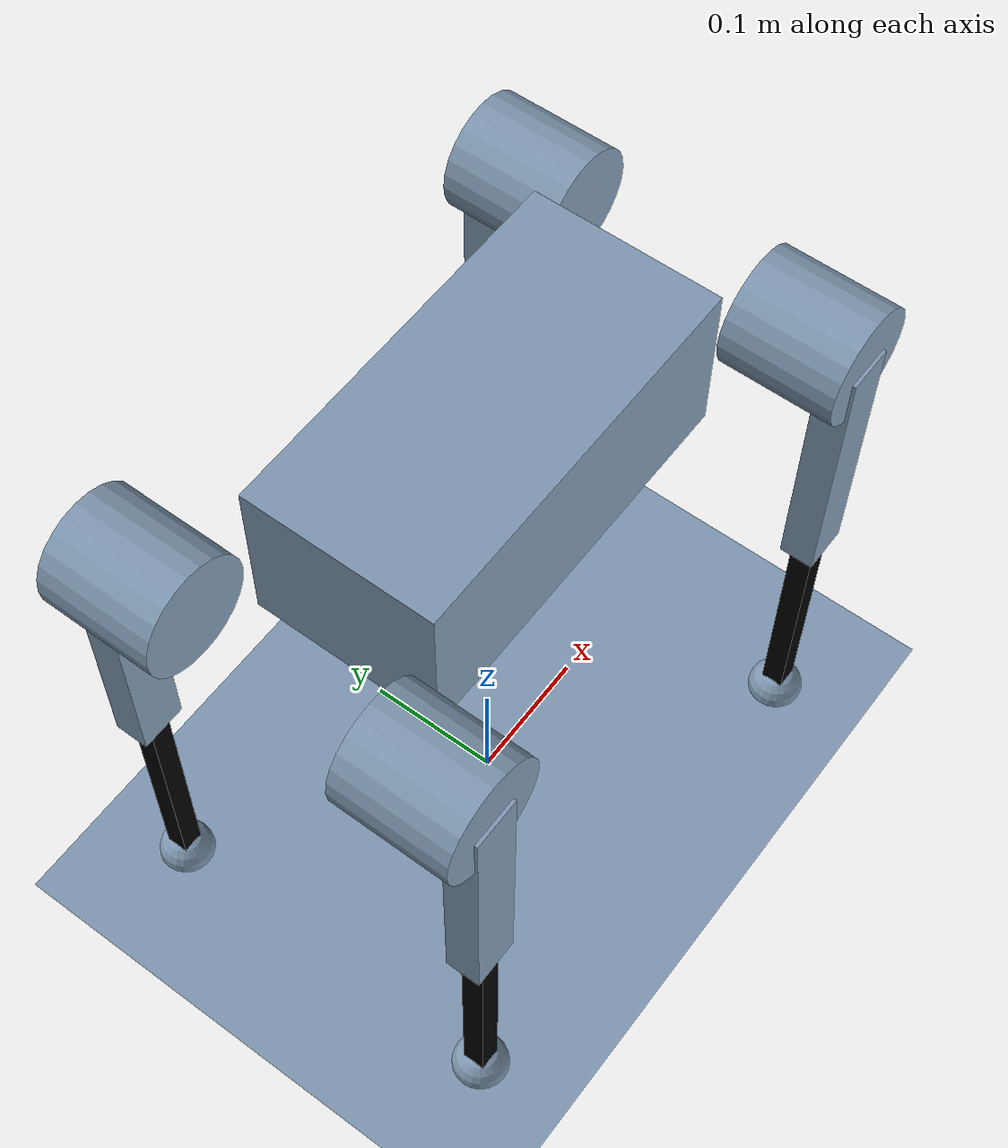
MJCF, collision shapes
<mujoco model="a1_description">
    <compiler angle="radian" meshdir="meshes/" />
    <size njmax="500" nconmax="100" />
    <!-- -9.806 gravity term -->
    <option gravity='0 0 -9.81' iterations='50' solver='Newton' timestep='0.0005'/>
    <option cone="elliptic" impratio="100" integrator="RK4"/> <!-- integrator="RK4" -->
    <option>
        <flag sensornoise="enable" />
    </option>

    <default>
        <!-- solimp="0.05 1 0.01 .9 1" solref="-50 -2000" -->
        <geom contype="1" conaffinity="1" solimp="0.05 1 0.01 .9 1" solref="-50 -2000" condim="6"
              friction="0.5 0.02 0.01" rgba="0.5 0.6 0.7 1" margin="0.001" group="0"/> <!-- 0.8 friction -->

        <light castshadow="false" diffuse="1 1 1"/>
        <motor ctrlrange="-33.5 33.5" ctrllimited="true"/>
        <camera fovy="35"/>
        <joint damping="1.0" armature="0.01" frictionloss="0.2" /> <!-- damping = 0.2? -->
    </default>

    <asset>
        <mesh name="trunk" file="trunk.stl" />
        <mesh name="hip" file="hip.stl" />
        <mesh name="thigh_mirror" file="thigh_mirror.stl" />
        <mesh name="calf" file="calf.stl" />
        <mesh name="thigh" file="thigh.stl" />
    </asset>

    <asset>
        <texture type="skybox" builtin="gradient" rgb1=".3 .5 .7" rgb2="0 0 0" width="32" height="512"/>
        <texture name="body" type="cube" builtin="flat" width="128" height="128" rgb1="1 0.5 .2" rgb2="1 0.5 .2" markrgb="1 1 1" random="0.01"/>
        <material name="body" texture="body" texuniform="true" rgba="1 0.5 .2 1"/>
        <texture name="trunk" type="cube" builtin="flat" width="128" height="128" rgb1=".3 .3 .3" rgb2=".3 .3 .3" markrgb="1 1 1" random="0.01"/>
        <material name="trunk" texture="trunk" rgba=".2 .2 .2 1"/>
        <texture name="plane" type="2d" builtin="checker" width="512" height="512" rgb1=".5 .5 .5" rgb2=".6 .6 .6"/> <!-- rgb1=".1 .2 .3" rgb2=".2 .3 .4" -->
        <material name="plane" texture="plane" texrepeat="1 1" texuniform="true" reflectance="0.01"/>
    </asset>

    <visual>
        <rgba com="0.502 1.0 0 0.5" contactforce="0.98 0.4 0.4 0.7" contactpoint="1.0 1.0 0.6 0.4" haze="0.15 0.25 0.35 1"/>
        <scale com="0.2" forcewidth="0.035" contactwidth="0.10" contactheight="0.04"/>
        <global azimuth="-220" elevation="-20" />
    </visual>

    <statistic extent="1.5" />

    <worldbody>
        <light name="spotlight" mode="targetbodycom" target="trunk" diffuse="1 1 1" specular="0.3 0.3 0.3" pos="0 -2 3" cutoff="100"/>
        <camera name="track" mode="trackcom" pos="0 0 1.5" xyaxes="1 0 0 0 0.707 0.707"/>
        <geom name="floor" size="0 0 .05" type="plane" material="plane" condim="6"/> <!-- condim = "3" -->

        <body name="trunk" pos="0 0 .4" gravcomp="0">
            <inertial pos="0.0127283 0.00218554 0.000514891" quat="0.00186575 0.711506 0.000389649 0.702677" mass="6.001" diaginertia="0.0648213 0.0565803 0.0169323" />
            <joint name="body" type="free" />
            <geom type="mesh" contype="0" conaffinity="0" group="1" material="trunk" mesh="trunk" />
            <geom size="0.1335 0.066 0.057" type="box" material="trunk" />
            <geom size="0.0005 0.0005 0.0005" type="box" contype="0" conaffinity="0" group="1" material="body" />
            <geom size="0.0005 0.0005 0.0005" type="box" material="trunk" />
            <site name="imu" pos="0 0 0"/>
            <light name="top" pos="0 0 2" mode="trackcom" />

            <body name="FR_hip" pos="0.183 -0.047 0" gravcomp="0">
                <inertial pos="-0.003311 -0.000635 3.1e-05" quat="0.507528 0.506268 0.491507 0.494499" mass="0.696" diaginertia="0.000807752 0.00055293 0.000468983" />
                <joint name="FR_hip_joint" pos="0 0 0" axis="1 0 0" limited="true" range="-0.802851 0.802851" damping="2" />
                <geom quat="0 1 0 0" type="mesh" contype="0" conaffinity="0" group="1" material="body" mesh="hip" />
                <geom size="0.04 0.04" pos="0 -0.055 0" quat="0.707107 0.707107 0 0" type="cylinder" material="body" />
                <body name="FR_thigh" pos="0 -0.08505 0" gravcomp="0">
                    <inertial pos="-0.003237 0.022327 -0.027326" quat="0.999125 -0.00256393 -0.0409531 -0.00806091" mass="1.013" diaginertia="0.00555739 0.00513936 0.00133944" />
                    <joint name="FR_thigh_joint" pos="0 0 0" axis="0 1 0" limited="true" range="-1.0472 4.18879" /> <!-- limited = "true" -->
                    <geom type="mesh" contype="0" conaffinity="0" group="1" material="body" mesh="thigh_mirror" />
                    <geom size="0.1 0.01225 0.017" pos="0 0 -0.1" quat="0.707107 0 0.707107 0" type="box" material="body" />
                    <body name="FR_calf" pos="0 0 -0.2" gravcomp="0"> <!-- gravcomp="1" -->
                        <inertial pos="0.00472659 0 -0.131975" quat="0.706886 0.017653 0.017653 0.706886" mass="0.226" diaginertia="0.00340344 0.00339393 3.54834e-05" />
                        <joint name="FR_calf_joint" pos="0 0 0" axis="0 1 0" limited="true" range="-2.69653 -0.916298" />
                        <geom type="mesh" contype="0" conaffinity="0" group="1" material="trunk" mesh="calf" />
                        <geom size="0.1 0.008 0.008" pos="0 0 -0.1" quat="0.707107 0 0.707107 0" type="box" rgba="0 0 0 0" />
                        <geom size="0.01" pos="0 0 -0.2" contype="0" conaffinity="0" group="1" material="trunk" />
                        <geom size="0.02" pos="0 0 -0.2" material="trunk" />
                    </body>
                </body>
            </body>
            <body name="FL_hip" pos="0.183 0.047 0" gravcomp="0">
                <inertial pos="-0.003311 0.000635 3.1e-05" quat="0.494499 0.491507 0.506268 0.507528" mass="0.696" diaginertia="0.000807752 0.00055293 0.000468983" />
                <joint name="FL_hip_joint" pos="0 0 0" axis="1 0 0" limited="true" range="-0.802851 0.802851" damping="2"/>
                <geom type="mesh" contype="0" conaffinity="0" group="1" material="body" mesh="hip" />
                <geom size="0.04 0.04" pos="0 0.055 0" quat="0.707107 0.707107 0 0" type="cylinder" material="body" />
                <body name="FL_thigh" pos="0 0.08505 0" gravcomp="0">
                    <inertial pos="-0.003237 -0.022327 -0.027326" quat="0.999125 0.00256393 -0.0409531 0.00806091" mass="1.013" diaginertia="0.00555739 0.00513936 0.00133944" />
                    <joint name="FL_thigh_joint" pos="0 0 0" axis="0 1 0" limited="true" range="-1.0472 4.18879" />
                    <geom type="mesh" contype="0" conaffinity="0" group="1" material="body" mesh="thigh" />
                    <geom size="0.1 0.01225 0.017" pos="0 0 -0.1" quat="0.707107 0 0.707107 0" type="box" material="body" />
                    <body name="FL_calf" pos="0 0 -0.2" gravcomp="0">
                        <inertial pos="0.00472659 0 -0.131975" quat="0.706886 0.017653 0.017653 0.706886" mass="0.226" diaginertia="0.00340344 0.00339393 3.54834e-05" />
                        <joint name="FL_calf_joint" pos="0 0 0" axis="0 1 0" limited="true" range="-2.69653 -0.916298" />
                        <geom type="mesh" contype="0" conaffinity="0" group="1" material="trunk" mesh="calf" />
                        <geom size="0.1 0.008 0.008" pos="0 0 -0.1" quat="0.707107 0 0.707107 0" type="box" rgba="0 0 0 0" />
                        <geom size="0.01" pos="0 0 -0.2" contype="0" conaffinity="0" group="1" material="trunk" />
                        <geom size="0.02" pos="0 0 -0.2" material="trunk" />
                    </body>
                </body>
            </body>
            <body name="RR_hip" pos="-0.183 -0.047 0" gravcomp="0">
                <inertial pos="0.003311 -0.000635 3.1e-05" quat="0.491507 0.494499 0.507528 0.506268" mass="0.696" diaginertia="0.000807752 0.00055293 0.000468983" />
                <joint name="RR_hip_joint" pos="0 0 0" axis="1 0 0" limited="true" range="-0.802851 0.802851" damping="2"/>
                <geom quat="0 0 0 -1" type="mesh" contype="0" conaffinity="0" group="1" material="body" mesh="hip" />
                <geom size="0.04 0.04" pos="0 -0.055 0" quat="0.707107 0.707107 0 0" type="cylinder" material="body" />
                <body name="RR_thigh" pos="0 -0.08505 0" gravcomp="0">
                    <inertial pos="-0.003237 0.022327 -0.027326" quat="0.999125 -0.00256393 -0.0409531 -0.00806091" mass="1.013" diaginertia="0.00555739 0.00513936 0.00133944" />
                    <joint name="RR_thigh_joint" pos="0 0 0" axis="0 1 0" limited="true" range="-1.0472 4.18879" />
                    <geom type="mesh" contype="0" conaffinity="0" group="1" material="body" mesh="thigh_mirror" />
                    <geom size="0.1 0.01225 0.017" pos="0 0 -0.1" quat="0.707107 0 0.707107 0" type="box" material="body" />
                    <body name="RR_calf" pos="0 0 -0.2" gravcomp="0">
                        <inertial pos="0.00472659 0 -0.131975" quat="0.706886 0.017653 0.017653 0.706886" mass="0.226" diaginertia="0.00340344 0.00339393 3.54834e-05" />
                        <joint name="RR_calf_joint" pos="0 0 0" axis="0 1 0" limited="true" range="-2.69653 -0.916298" />
                        <geom type="mesh" contype="0" conaffinity="0" group="1" material="trunk" mesh="calf" />
                        <geom size="0.1 0.008 0.008" pos="0 0 -0.1" quat="0.707107 0 0.707107 0" type="box" rgba="0 0 0 0" />
                        <geom size="0.01" pos="0 0 -0.2" contype="0" conaffinity="0" group="1" material="trunk" />
                        <geom size="0.02" pos="0 0 -0.2" material="trunk" />
                    </body>
                </body>
            </body>
            <body name="RL_hip" pos="-0.183 0.047 0" gravcomp="0">
                <inertial pos="0.003311 0.000635 3.1e-05" quat="0.506268 0.507528 0.494499 0.491507" mass="0.696" diaginertia="0.000807752 0.00055293 0.000468983" />
                <joint name="RL_hip_joint" pos="0 0 0" axis="1 0 0" limited="true" range="-0.802851 0.802851" damping="2"/>
                <geom quat="0 0 1 0" type="mesh" contype="0" conaffinity="0" group="1" material="body" mesh="hip" />
                <geom size="0.04 0.04" pos="0 0.055 0" quat="0.707107 0.707107 0 0" type="cylinder" material="body" />
                <body name="RL_thigh" pos="0 0.08505 0" gravcomp="0">
                    <inertial pos="-0.003237 -0.022327 -0.027326" quat="0.999125 0.00256393 -0.0409531 0.00806091" mass="1.013" diaginertia="0.00555739 0.00513936 0.00133944" />
                    <joint name="RL_thigh_joint" pos="0 0 0" axis="0 1 0" limited="true" range="-1.0472 4.18879" />
                    <geom type="mesh" contype="0" conaffinity="0" group="1" material="body" mesh="thigh" />
                    <geom size="0.1 0.01225 0.017" pos="0 0 -0.1" quat="0.707107 0 0.707107 0" type="box" material="body" />
                    <body name="RL_calf" pos="0 0 -0.2" gravcomp="0">
                        <inertial pos="0.00472659 0 -0.131975" quat="0.706886 0.017653 0.017653 0.706886" mass="0.226" diaginertia="0.00340344 0.00339393 3.54834e-05" />
                        <joint name="RL_calf_joint" pos="0 0 0" axis="0 1 0" limited="true" range="-2.69653 -0.916298" />
                        <geom type="mesh" contype="0" conaffinity="0" group="1" material="trunk" mesh="calf" />
                        <geom size="0.1 0.008 0.008" pos="0 0 -0.1" quat="0.707107 0 0.707107 0" type="box" rgba="0 0 0 0" />
                        <geom size="0.01" pos="0 0 -0.2" contype="0" conaffinity="0" group="1" material="trunk" />
                        <geom size="0.02" pos="0 0 -0.2" material="trunk" />
                    </body>
                </body>
            </body>
        </body>
    </worldbody>
    <actuator>
        <!-- position commands -->
        <!-- kp = 25, kv = 7 works ok, at kp = 20, PD needs FF to work -->
        <position name="FR_hip_p"       kp="0" ctrllimited="true" ctrlrange="-75 75" joint="FR_hip_joint"/>
        <position name="FR_thigh_p"     kp="0" ctrllimited="true" ctrlrange="-75 75" joint="FR_thigh_joint"/>
        <position name="FR_calf_p"      kp="0" ctrllimited="true" ctrlrange="-75 75" joint="FR_calf_joint"/>
        <position name="FL_hip_p"       kp="0" ctrllimited="true" ctrlrange="-75 75" joint="FL_hip_joint"/>
        <position name="FL_thigh_p"     kp="0" ctrllimited="true" ctrlrange="-75 75" joint="FL_thigh_joint"/>
        <position name="FL_calf_p"      kp="0" ctrllimited="true" ctrlrange="-75 75" joint="FL_calf_joint"/>
        <position name="RR_hip_p"       kp="0" ctrllimited="true" ctrlrange="-75 75" joint="RR_hip_joint"/>
        <position name="RR_thigh_p"     kp="0" ctrllimited="true" ctrlrange="-75 75" joint="RR_thigh_joint"/>
        <position name="RR_calf_p"      kp="0" ctrllimited="true" ctrlrange="-75 75" joint="RR_calf_joint" />
        <position name="RL_hip_p"       kp="0" ctrllimited="true" ctrlrange="-75 75" joint="RL_hip_joint"/>
        <position name="RL_thigh_p"     kp="0" ctrllimited="true" ctrlrange="-75 75" joint="RL_thigh_joint"/>
        <position name="RL_calf_p"      kp="0" ctrllimited="true" ctrlrange="-75 75" joint="RL_calf_joint"/>

        <!-- velocity commands -->
        <velocity name="FR_hip_v"       kv="0" ctrllimited="true" ctrlrange="-50 50" joint="FR_hip_joint"/>
        <velocity name="FR_thigh_v"     kv="0" ctrllimited="true" ctrlrange="-50 50" joint="FR_thigh_joint"/>
        <velocity name="FR_calf_v"      kv="0" ctrllimited="true" ctrlrange="-50 50" joint="FR_calf_joint"/>
        <velocity name="FL_hip_v"       kv="0" ctrllimited="true" ctrlrange="-50 50" joint="FL_hip_joint"/>
        <velocity name="FL_thigh_v"     kv="0" ctrllimited="true" ctrlrange="-50 50" joint="FL_thigh_joint"/>
        <velocity name="FL_calf_v"      kv="0" ctrllimited="true" ctrlrange="-50 50" joint="FL_calf_joint"/>
        <velocity name="RR_hip_v"       kv="0" ctrllimited="true" ctrlrange="-50 50" joint="RR_hip_joint"/>
        <velocity name="RR_thigh_v"     kv="0" ctrllimited="true" ctrlrange="-50 50" joint="RR_thigh_joint"/>
        <velocity name="RR_calf_v"      kv="0" ctrllimited="true" ctrlrange="-50 50" joint="RR_calf_joint" />
        <velocity name="RL_hip_v"       kv="0" ctrllimited="true" ctrlrange="-50 50" joint="RL_hip_joint"/>
        <velocity name="RL_thigh_v"     kv="0" ctrllimited="true" ctrlrange="-50 50" joint="RL_thigh_joint"/>
        <velocity name="RL_calf_v"      kv="0" ctrllimited="true" ctrlrange="-50 50" joint="RL_calf_joint"/>

<!--        &lt;!&ndash; velocity commands &ndash;&gt;-->

        <!-- feed forward commands -->
        <!-- had cntrl range at +-100 -->
        <motor name="FR_hip"       gear="1" ctrllimited="true" ctrlrange="-330 330" joint="FR_hip_joint"/>
        <motor name="FR_thigh"     gear="1" ctrllimited="true" ctrlrange="-330 330" joint="FR_thigh_joint"/>
        <motor name="FR_calf"      gear="1" ctrllimited="true" ctrlrange="-330 330" joint="FR_calf_joint"/>
        <motor name="FL_hip"       gear="1" ctrllimited="true" ctrlrange="-330 330" joint="FL_hip_joint"/>
        <motor name="FL_thigh"     gear="1" ctrllimited="true" ctrlrange="-330 330" joint="FL_thigh_joint"/>
        <motor name="FL_calf"      gear="1" ctrllimited="true" ctrlrange="-330 330" joint="FL_calf_joint"/>
        <motor name="RR_hip"       gear="1" ctrllimited="true" ctrlrange="-330 330" joint="RR_hip_joint"/>
        <motor name="RR_thigh"     gear="1" ctrllimited="true" ctrlrange="-330 330" joint="RR_thigh_joint"/>
        <motor name="RR_calf"      gear="1" ctrllimited="true" ctrlrange="-330 330" joint="RR_calf_joint" />
        <motor name="RL_hip"       gear="1" ctrllimited="true" ctrlrange="-330 330" joint="RL_hip_joint"/>
        <motor name="RL_thigh"     gear="1" ctrllimited="true" ctrlrange="-330 330" joint="RL_thigh_joint"/>
        <motor name="RL_calf"      gear="1" ctrllimited="true" ctrlrange="-330 330" joint="RL_calf_joint"/>
    </actuator>

    <sensor>
        <jointpos name="FR_hip_pos"     joint="FR_hip_joint" noise="0"/>
        <jointpos name="FR_thigh_pos"   joint="FR_thigh_joint" noise="0"/>
        <jointpos name="FR_calf_pos"    joint="FR_calf_joint" noise="0"/>
        <jointpos name="FL_hip_pos"     joint="FL_hip_joint" noise="0"/>
        <jointpos name="FL_thigh_pos"   joint="FL_thigh_joint" noise="0"/>
        <jointpos name="FL_calf_pos"    joint="FL_calf_joint" noise="0"/>
        <jointpos name="RR_hip_pos"     joint="RR_hip_joint" noise="0"/>
        <jointpos name="RR_thigh_pos"   joint="RR_thigh_joint" noise="0"/>
        <jointpos name="RR_calf_pos"    joint="RR_calf_joint" noise="0"/>
        <jointpos name="RL_hip_pos"     joint="RL_hip_joint" noise="0"/>
        <jointpos name="RL_thigh_pos"   joint="RL_thigh_joint" noise="0"/>
        <jointpos name="RL_calf_pos"    joint="RL_calf_joint" noise="0"/>

        <jointvel name="FR_hip_vel"     joint="FR_hip_joint" noise="0"/>
        <jointvel name="FR_thigh_vel"   joint="FR_thigh_joint" noise="0"/>
        <jointvel name="FR_calf_vel"    joint="FR_calf_joint" noise="0"/>
        <jointvel name="FL_hip_vel"     joint="FL_hip_joint" noise="0"/>
        <jointvel name="FL_thigh_vel"   joint="FL_thigh_joint" noise="0"/>
        <jointvel name="FL_calf_vel"    joint="FL_calf_joint" noise="0"/>
        <jointvel name="RR_hip_vel"     joint="RR_hip_joint" noise="0"/>
        <jointvel name="RR_thigh_vel"   joint="RR_thigh_joint" noise="0"/>
        <jointvel name="RR_calf_vel"    joint="RR_calf_joint" noise="0"/>
        <jointvel name="RL_hip_vel"     joint="RL_hip_joint" noise="0"/>
        <jointvel name="RL_thigh_vel"   joint="RL_thigh_joint" noise="0"/>
        <jointvel name="RL_calf_vel"    joint="RL_calf_joint" noise="0"/>

        <accelerometer name="Body_Acc" site="imu"/>

        <gyro name="Body_Gyro" site="imu"/>

        <framepos name="Body_Pos" objtype="site" objname="imu"/>

        <framequat name="Body_Quat" objtype="site" objname="imu"/>

    </sensor>

</mujoco>
